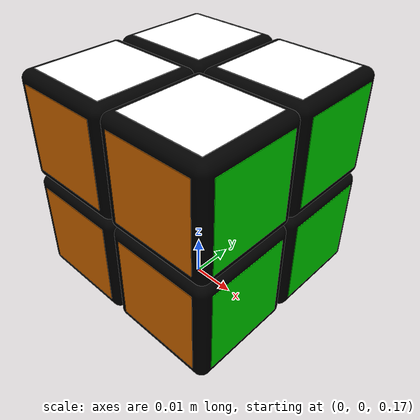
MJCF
<!-- Author: tgli0809@gmail.com -->
<mujoco model='Rotate layer 1'>
    <compiler angle='radian' coordinate='local' texturedir='textures/' meshdir='mesh/'/>
    <option timestep='0.002' gravity='0 0 0' iterations='50' apirate='200'>
        <flag gravity='disable' warmstart='enable'/>
    </option>
    <size nconmax='5000' njmax='2000'/>

    <default class='main'>
        <include file='rubik_cube/rubik_cube_default.xml'/>

        <default class='rotate:box'>
            <geom rgba='1 1 1 0.' friction='10 0.005 0.001' solimp="0.999 0.9995 0.001" solref="0.0006 1" density='1000'/>
        </default>
    </default>

    <asset>
        <include file='rubik_cube/rubik_cube_asset.xml'/>
        <mesh name='rubik:box_mesh' file='Part1.STL' scale='0.00999 0.00999 0.00999'/>
    </asset>

    <worldbody>
        <light directional='false' diffuse='.8 .8 .8' specular='0.3 0.3 0.3' pos='0 0 2.0' dir='0 -.15 -1' castshadow='false'/>
        <geom name='floor' pos='0 0 0' size='0.5 0.5 .125' type='plane' material='MatPlane' condim='3'/>
        <body name='rubik:box_0_0_0' pos="-0.0125 -0.0125 0.1875">
            <include file="rubik_cube/cube_body_2.5cm.xml"/>
        </body>

        <body name='rotate_U1' pos='0.03 0 0.2125'>
            <geom type='box' size='0.005 0.025 0.005' class='rotate:box'/>
            <joint name='rotate_U1_joint' type='hinge' pos='-0.03 0 0' axis='0 0 -1' damping='0.0001'/>
            <joint name='slide_U1_joint' type='slide' axis='1 0 0' damping='0.1'/>
        </body>

        <body name='rotate_U2' pos='0 0.03 0.2125'>
            <geom type='box' size='0.025 0.005 0.005' class='rotate:box'/>
            <joint name='rotate_U2_joint' type='hinge' pos='0 -0.03 0' axis='0 0 -1' damping='0.0001'/>
            <joint name='slide_U2_joint' type='slide' axis='0 1 0' damping='0.1'/>
        </body>

        <body name='rotate_U3' pos='-0.03 0 0.2125'>
            <geom type='box' size='0.005 0.025 0.005' class='rotate:box'/>
            <joint name='rotate_U3_joint' type='hinge' pos='0.03 0 0' axis='0 0 -1' damping='0.0001'/>
            <joint name='slide_U3_joint' type='slide' axis='-1 0 0' damping='0.1'/>
        </body>

        <body name='rotate_U4' pos='0 -0.03 0.2125'>
            <geom type='box' size='0.025 0.005 0.005'  class='rotate:box'/>
            <joint name='rotate_U4_joint' type='hinge' pos='0 0.03 0' axis='0 0 -1' damping='0.0001'/>
            <joint name='slide_U4_joint' type='slide' axis='0 -1 0' damping='0.1'/>
        </body>

        <body name='rotate_R1' pos='0.03 0.0125 0.20'>
            <geom type='box' size='0.005 0.005 0.025' class='rotate:box'/>
            <joint name='rotate_R1_joint' type='hinge' pos='-0.03 0 0' axis='0 -1 0' damping='0.0001'/>
            <joint name='slide_R1_joint' type='slide' axis='1 0 0' damping='0.1'/>
        </body>

        <body name='rotate_R2' pos='0 0.0125 0.17'>
            <geom type='box' size='0.025 0.005 0.005' class='rotate:box'/>
            <joint name='rotate_R2_joint' type='hinge' pos='0 0 0.03' axis='0 -1 0' damping='0.0001'/>
            <joint name='slide_R2_joint' type='slide' axis='0 0 -1' damping='0.1'/>
        </body>

        <body name='rotate_R3' pos='-0.03 0.0125 0.20'>
            <geom type='box' size='0.005 0.005 0.025'  class='rotate:box'/>
            <joint name='rotate_R3_joint' type='hinge' pos='0.03 0 0' axis='0 -1 0' damping='0.0001'/>
            <joint name='slide_R3_joint' type='slide' axis='-1 0 0' damping='0.1'/>
        </body>

        <body name='rotate_R4' pos='0 0.0125 0.23'>
            <geom type='box' size='0.025 0.005 0.005' class='rotate:box'/>
            <joint name='rotate_R4_joint' type='hinge' pos='0 0 -0.03' axis='0 -1 0' damping='0.0001'/>
            <joint name='slide_R4_joint' type='slide' axis='0 0 1' damping='0.1'/>
        </body>

        <body name='rotate_F1' pos='0.0125 0.03 0.20'>
            <geom type='box' size='0.005 0.005 0.025'  class='rotate:box'/>
            <joint name='rotate_F1_joint' type='hinge' pos='0 -0.03 0' axis='-1 0 0' damping='0.0001'/>
            <joint name='slide_F1_joint' type='slide' axis='0 1 0' damping='0.1'/>
        </body>

        <body name='rotate_F2' pos='0.0125 0 0.23'>
            <geom type='box' size='0.005 0.025 0.005' class='rotate:box'/>
            <joint name='rotate_F2_joint' type='hinge' pos='0 0 -0.03' axis='-1 0 0' damping='0.0001'/>
            <joint name='slide_F2_joint' type='slide' axis='0 0 1' damping='0.1'/>
        </body>

        <body name='rotate_F3' pos='0.0125 -0.03 0.20'>
            <geom type='box' size='0.005 0.005 0.025'  class='rotate:box'/>
            <joint name='rotate_F3_joint' type='hinge' pos='0 0.03 0' axis='-1 0 0' damping='0.0001'/>
            <joint name='slide_F3_joint' type='slide' axis='0 -1 0' damping='0.1'/>
        </body>

        <body name='rotate_F4' pos='0.0125 0 0.17'>
            <geom type='box' size='0.005 0.025 0.005' class='rotate:box'/>
            <joint name='rotate_F4_joint' type='hinge' pos='0 0 0.03' axis='-1 0 0' damping='0.0001'/>
            <joint name='slide_F4_joint' type='slide' axis='0 0 -1' damping='0.1'/>
        </body>

    </worldbody>

    <actuator>
        <position name='U1_rotate' joint='rotate_U1_joint' ctrlrange='-10 10' forcerange='-10 10' kp='1'/>
        <position name='U2_rotate' joint='rotate_U2_joint' ctrlrange='-10 10' forcerange='-10 10' kp='1'/>
        <position name='U3_rotate' joint='rotate_U3_joint' ctrlrange='-10 10' forcerange='-10 10' kp='1'/>
        <position name='U4_rotate' joint='rotate_U4_joint' ctrlrange='-10 10' forcerange='-10 10' kp='1'/>
        <position name='U1_slide' joint='slide_U1_joint' ctrlrange='-1 1' forcerange='-10 10' kp='1'/>
        <position name='U2_slide' joint='slide_U2_joint' ctrlrange='-1 1' forcerange='-10 10' kp='1'/>
        <position name='U3_slide' joint='slide_U3_joint' ctrlrange='-1 1' forcerange='-10 10' kp='1'/>
        <position name='U4_slide' joint='slide_U4_joint' ctrlrange='-1 1' forcerange='-10 10' kp='1'/>

        <position name='R1_rotate' joint='rotate_R1_joint' ctrlrange='-10 10' forcerange='-10 10' kp='1'/>
        <position name='R2_rotate' joint='rotate_R2_joint' ctrlrange='-10 10' forcerange='-10 10' kp='1'/>
        <position name='R3_rotate' joint='rotate_R3_joint' ctrlrange='-10 10' forcerange='-10 10' kp='1'/>
        <position name='R4_rotate' joint='rotate_R4_joint' ctrlrange='-10 10' forcerange='-10 10' kp='1'/>
        <position name='R1_slide' joint='slide_R1_joint' ctrlrange='-1 1' forcerange='-10 10' kp='1'/>
        <position name='R2_slide' joint='slide_R2_joint' ctrlrange='-1 1' forcerange='-10 10' kp='1'/>
        <position name='R3_slide' joint='slide_R3_joint' ctrlrange='-1 1' forcerange='-10 10' kp='1'/>
        <position name='R4_slide' joint='slide_R4_joint' ctrlrange='-1 1' forcerange='-10 10' kp='1'/>

        <position name='F1_rotate' joint='rotate_F1_joint' ctrlrange='-10 10' forcerange='-10 10' kp='1'/>
        <position name='F2_rotate' joint='rotate_F2_joint' ctrlrange='-10 10' forcerange='-10 10' kp='1'/>
        <position name='F3_rotate' joint='rotate_F3_joint' ctrlrange='-10 10' forcerange='-10 10' kp='1'/>
        <position name='F4_rotate' joint='rotate_F4_joint' ctrlrange='-10 10' forcerange='-10 10' kp='1'/>
        <position name='F1_slide' joint='slide_F1_joint' ctrlrange='-1 1' forcerange='-10 10' kp='1'/>
        <position name='F2_slide' joint='slide_F2_joint' ctrlrange='-1 1' forcerange='-10 10' kp='1'/>
        <position name='F3_slide' joint='slide_F3_joint' ctrlrange='-1 1' forcerange='-10 10' kp='1'/>
        <position name='F4_slide' joint='slide_F4_joint' ctrlrange='-1 1' forcerange='-10 10' kp='1'/>

    </actuator>

    <contact>
        <exclude body1='rotate_U1' body2='rotate_R1'/>
        <exclude body1='rotate_U1' body2='rotate_R2'/>
        <exclude body1='rotate_U1' body2='rotate_R3'/>
        <exclude body1='rotate_U1' body2='rotate_R4'/>
        <exclude body1='rotate_U2' body2='rotate_R1'/>
        <exclude body1='rotate_U2' body2='rotate_R2'/>
        <exclude body1='rotate_U2' body2='rotate_R3'/>
        <exclude body1='rotate_U2' body2='rotate_R4'/>
        <exclude body1='rotate_U3' body2='rotate_R1'/>
        <exclude body1='rotate_U3' body2='rotate_R2'/>
        <exclude body1='rotate_U3' body2='rotate_R3'/>
        <exclude body1='rotate_U3' body2='rotate_R4'/>
        <exclude body1='rotate_U4' body2='rotate_R1'/>
        <exclude body1='rotate_U4' body2='rotate_R2'/>
        <exclude body1='rotate_U4' body2='rotate_R3'/>
        <exclude body1='rotate_U4' body2='rotate_R4'/>

        <exclude body1='rotate_F1' body2='rotate_R1'/>
        <exclude body1='rotate_F1' body2='rotate_R2'/>
        <exclude body1='rotate_F1' body2='rotate_R3'/>
        <exclude body1='rotate_F1' body2='rotate_R4'/>
        <exclude body1='rotate_F2' body2='rotate_R1'/>
        <exclude body1='rotate_F2' body2='rotate_R2'/>
        <exclude body1='rotate_F2' body2='rotate_R3'/>
        <exclude body1='rotate_F2' body2='rotate_R4'/>
        <exclude body1='rotate_F3' body2='rotate_R1'/>
        <exclude body1='rotate_F3' body2='rotate_R2'/>
        <exclude body1='rotate_F3' body2='rotate_R3'/>
        <exclude body1='rotate_F3' body2='rotate_R4'/>
        <exclude body1='rotate_F4' body2='rotate_R1'/>
        <exclude body1='rotate_F4' body2='rotate_R2'/>
        <exclude body1='rotate_F4' body2='rotate_R3'/>
        <exclude body1='rotate_F4' body2='rotate_R4'/>

        <exclude body1='rotate_F1' body2='rotate_U1'/>
        <exclude body1='rotate_F1' body2='rotate_U2'/>
        <exclude body1='rotate_F1' body2='rotate_U3'/>
        <exclude body1='rotate_F1' body2='rotate_U4'/>
        <exclude body1='rotate_F2' body2='rotate_U1'/>
        <exclude body1='rotate_F2' body2='rotate_U2'/>
        <exclude body1='rotate_F2' body2='rotate_U3'/>
        <exclude body1='rotate_F2' body2='rotate_U4'/>
        <exclude body1='rotate_F3' body2='rotate_U1'/>
        <exclude body1='rotate_F3' body2='rotate_U2'/>
        <exclude body1='rotate_F3' body2='rotate_U3'/>
        <exclude body1='rotate_F3' body2='rotate_U4'/>
        <exclude body1='rotate_F4' body2='rotate_U1'/>
        <exclude body1='rotate_F4' body2='rotate_U2'/>
        <exclude body1='rotate_F4' body2='rotate_U3'/>
        <exclude body1='rotate_F4' body2='rotate_U4'/>
    </contact>

    <include file="rubik_cube/rubik_cube_others.xml"/>
</mujoco>

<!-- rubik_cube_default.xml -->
<mujoco>
    <default class='rubik:visual'>
        <geom contype='1' conaffinity='1' density='0.1'/>
    </default>

    <default class='rubik:ball_joint'>
        <joint damping='0.001'/>
    </default>

    <default class='rubik:box'>
      <geom contype='1' conaffinity='1' condim='4' density='567' solimp="0.9999 0.99995 0.001" solref="0.006 1"/>
    </default>
</mujoco>

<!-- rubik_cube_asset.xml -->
<mujoco>
    <texture name="texplane" type="2d" builtin="checker" rgb1="0.9 0.9 0.9" rgb2="0.2 0.2 0.2" width="512" height="512"/>
    <material name="MatPlane" reflectance='0.5' texture="texplane" texrepeat="1 1" texuniform="true"/>
    <texture name="texture:cube" filefront="box_white.png" filedown='box_orange.png' fileup='box_red.png' fileback='box_yellow.png' fileright='box_green.png' fileleft='box_blue.png'/>
    <material name="material:cube" texture="texture:cube" specular=".1" shininess="0.3" reflectance="0" rgba="1 1 1 0.5"/>

    <material name='Black' specular='.1' rgba='0 0 0 1'/>
    <material name='White' specular='.1' rgba='1 1 1 1'/>
    <material name='Yellow' specular='.1' rgba='1 1 0 1'/>
    <material name='Red' specular='.1' rgba='1 0 0 1'/>
    <material name='Orange' specular='.1' rgba='1 0.5 0 1'/>
    <material name='Blue' specular='.1' rgba='0 0 1 1'/>
    <material name='Green' specular='.1' rgba='0 1 0 1'/>
</mujoco>

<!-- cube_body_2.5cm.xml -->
<mujoco>
	<!-- The box size is 2.5 cm -->
            <geom name='rubik:box_0_0_0' pos='-0.0125 -0.0125 -0.0125' euler='0 0 0' type='mesh' mesh='rubik:box_mesh'  material='Black' class='rubik:box'/>
            <geom name='rubik:box_0_0_0_y' type='box' size='0.01 0.01 .0001' material='Yellow' pos='0 0 -0.0125' class='rubik:box'/>
            <geom name='rubik:box_0_0_0_b' type='box' size='.0001 0.01 0.01' material='Blue' pos='-0.0125 0 0' class='rubik:box'/>
            <geom name='rubik:box_0_0_0_o' type='box' size='0.01 .0001 0.01' material='Orange' pos='0 -0.0125 0' class='rubik:box'/>
            <site name='rubik:cube_center'  type='box' size='0.005 0.005 0.005' pos='0.0125 0.0125 0.0125' />

            <body name='rubik:box_1_0_0' pos='0.025 0 0'>
                <geom name='rubik:box_1_0_0' pos='-0.0125 -0.0125 -0.0125' euler='0 0 0' type='mesh' mesh='rubik:box_mesh'  material='Black' class='rubik:box'/>
                <geom name='rubik:box_1_0_0_y' type='box' size='0.01 0.01 .0001' material='Yellow' pos='0 0 -0.0125' class='rubik:box'/>
                <geom name='rubik:box_1_0_0_g' type='box' size='.0001 0.01 0.01' material='Green' pos='0.0125 0 0' class='rubik:box'/>
                <geom name='rubik:box_1_0_0_o' type='box' size='0.01 .0001 0.01' material='Orange' pos='0 -0.0125 0' class='rubik:box'/>
                <joint name='rubik:ball_joint_1_0_0' type='ball' pos='-0.0125 0.0125 0.0125' class='rubik:ball_joint'/>
            </body>

            <body name='rubik:box_0_1_0' pos='0 0.025 0'>
                <geom name='rubik:box_0_1_0' pos='-0.0125 -0.0125 -0.0125' euler='0 0 0' type='mesh' mesh='rubik:box_mesh' material='Black' class='rubik:box'/>
                <geom name='rubik:box_0_1_0_y' type='box' size='0.01 0.01 .0001' material='Yellow' pos='0 0 -0.0125' class='rubik:box'/>
                <geom name='rubik:box_0_1_0_b' type='box' size='.0001 0.01 0.01' material='Blue' pos='-0.0125 0 0' class='rubik:box'/>
                <geom name='rubik:box_0_1_0_r' type='box' size='0.01 .0001 0.01' material='Red' pos='0 0.0125 0' class='rubik:box'/>
                <joint name='rubik:ball_joint_0_1_0' type='ball' pos='0.0125 -0.0125 0.0125' class='rubik:ball_joint'/>
            </body>

            <body name='rubik:box_1_1_0' pos='0.025 0.025 0'>
                <geom name='rubik:box_1_1_0' pos='-0.0125 -0.0125 -0.0125' euler='0 0 0' type='mesh' mesh='rubik:box_mesh' material='Black' class='rubik:box'/>
                <geom name='rubik:box_1_1_0_y' type='box' size='0.01 0.01 .0001' material='Yellow' pos='0 0 -0.0125' class='rubik:box'/>
                <geom name='rubik:box_1_1_0_g' type='box' size='.0001 0.01 0.01' material='Green' pos='0.0125 0 0' class='rubik:box'/>
                <geom name='rubik:box_1_1_0_r' type='box' size='0.01 .0001 0.01' material='Red' pos='0 0.0125 0' class='rubik:box'/>
                <joint name='rubik:ball_joint_1_1_0' type='ball' pos='-0.0125 -0.0125 0.0125' class='rubik:ball_joint'/>
            </body>

            <body name='rubik:box_0_0_1' pos='0 0 0.025'>
                <geom name='rubik:box_0_0_1' pos='-0.0125 -0.0125 -0.0125' euler='0 0 0' type='mesh' mesh='rubik:box_mesh' material='Black' class='rubik:box'/>
                <geom name='rubik:box_0_0_1_w' type='box' size='0.01 0.01 .0001' material='White' pos='0 0 0.0125' class='rubik:box'/>
                <geom name='rubik:box_0_0_1_b' type='box' size='.0001 0.01 0.01' material='Blue' pos='-0.0125 0 0' class='rubik:box'/>
                <geom name='rubik:box_0_0_1_o' type='box' size='0.01 .0001 0.01' material='Orange' pos='0 -0.0125 0' class='rubik:box'/>
                <joint name='rubik:ball_joint_0_0_1' type='ball' pos='0.0125 0.0125 -0.0125' class='rubik:ball_joint'/>
            </body>

            <body name='rubik:box_1_0_1' pos='0.025 0 0.025'>
                <geom name='rubik:box_1_0_1' pos='-0.0125 -0.0125 -0.0125' euler='0 0 0' type='mesh' mesh='rubik:box_mesh' material='Black' class='rubik:box'/>
                <geom name='rubik:box_1_0_1_w' type='box' size='0.01 0.01 .0001' material='White' pos='0 0 0.0125' class='rubik:box'/>
                <geom name='rubik:box_1_0_1_g' type='box' size='.0001 0.01 0.01' material='Green' pos='0.0125 0 0' class='rubik:box'/>
                <geom name='rubik:box_1_0_1_o' type='box' size='0.01 .0001 0.01' material='Orange' pos='0 -0.0125 0' class='rubik:box'/>
                <joint name='rubik:ball_joint_1_0_1' type='ball' pos='-0.0125 0.0125 -0.0125' class='rubik:ball_joint'/>
            </body>

            <body name='rubik:box_0_1_1' pos='0 0.025 0.025'>
                <geom name='rubik:box_0_1_1' pos='-0.0125 -0.0125 -0.0125' euler='0 0 0' type='mesh' mesh='rubik:box_mesh' material='Black' class='rubik:box'/>
                <geom name='rubik:box_0_1_1_w' type='box' size='0.01 0.01 .0001' material='White' pos='0 0 0.0125' class='rubik:box'/>
                <geom name='rubik:box_0_1_1_b' type='box' size='.0001 0.01 0.01' material='Blue' pos='-0.0125 0 0' class='rubik:box'/>
                <geom name='rubik:box_0_1_1_r' type='box' size='0.01 .0001 0.01' material='Red' pos='0 0.0125 0' class='rubik:box'/>
                <joint name='rubik:ball_joint_0_1_1' type='ball' pos='0.0125 -0.0125 -0.0125' class='rubik:ball_joint'/>
            </body>

            <body name='rubik:box_1_1_1' pos='0.025 0.025 0.025'>
                <geom name='rubik:box_1_1_1' pos='-0.0125 -0.0125 -0.0125' euler='0 0 0' type='mesh' mesh='rubik:box_mesh' material='Black' class='rubik:box'/>
                <geom name='rubik:box_1_1_1_w' type='box' size='0.01 0.01 .0001' material='White' pos='0 0 0.0125' class='rubik:box'/>
                <geom name='rubik:box_1_1_1_g' type='box' size='.0001 0.01 0.01' material='Green' pos='0.0125 0 0' class='rubik:box'/>
                <geom name='rubik:box_1_1_1_r' type='box' size='0.01 .0001 0.01' material='Red' pos='0 0.0125 0' class='rubik:box'/>
                <joint name='rubik:ball_joint_1_1_1' type='ball' pos='-0.0125 -0.0125 -0.0125' class='rubik:ball_joint'/>
            </body>
</mujoco>

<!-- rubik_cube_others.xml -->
<mujoco>
    <contact>
        <pair geom1='rubik:box_0_0_0' geom2='rubik:box_1_1_1' condim='1' friction='0.1 0.005 0.001' solimp="0.99 0.995 0.001" solref="0.0006 1"/>
        <pair geom1='rubik:box_0_0_0' geom2='rubik:box_1_1_0' condim='1' friction='0.1 0.005 0.001' solimp="0.99 0.995 0.001" solref="0.0006 1"/>
        <pair geom1='rubik:box_0_0_0' geom2='rubik:box_1_0_1' condim='1' friction='0.1 0.005 0.001' solimp="0.99 0.995 0.001" solref="0.0006 1"/>
        <pair geom1='rubik:box_0_0_0' geom2='rubik:box_1_0_0' condim='1' friction='0.1 0.005 0.001' solimp="0.99 0.995 0.001" solref="0.0006 1"/>
        <pair geom1='rubik:box_0_0_0' geom2='rubik:box_0_1_1' condim='1' friction='0.1 0.005 0.001' solimp="0.99 0.995 0.001" solref="0.0006 1"/>
        <pair geom1='rubik:box_0_0_0' geom2='rubik:box_0_1_0' condim='1' friction='0.1 0.005 0.001' solimp="0.99 0.995 0.001" solref="0.0006 1"/>
        <pair geom1='rubik:box_0_0_0' geom2='rubik:box_0_0_1' condim='1' friction='0.1 0.005 0.001' solimp="0.99 0.995 0.001" solref="0.0006 1"/>
    </contact>
</mujoco>
